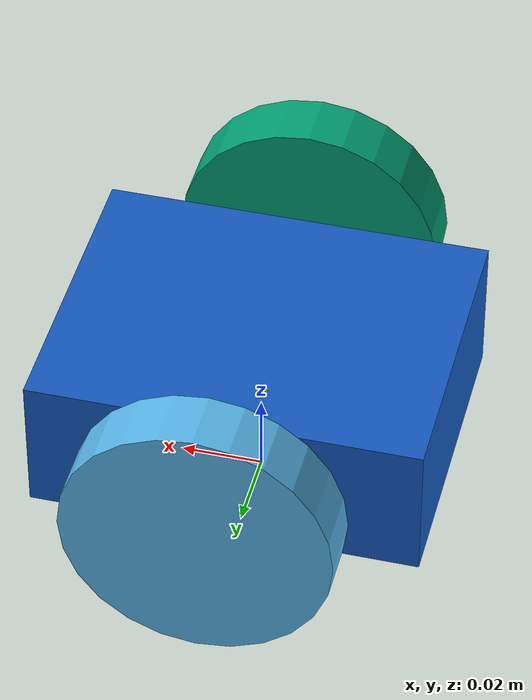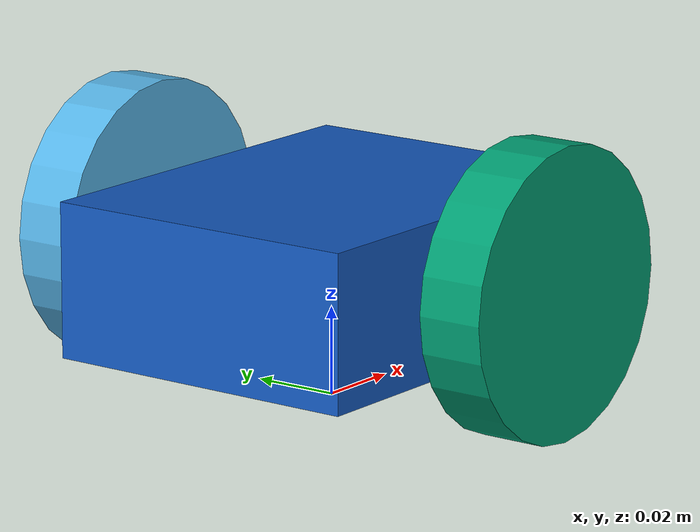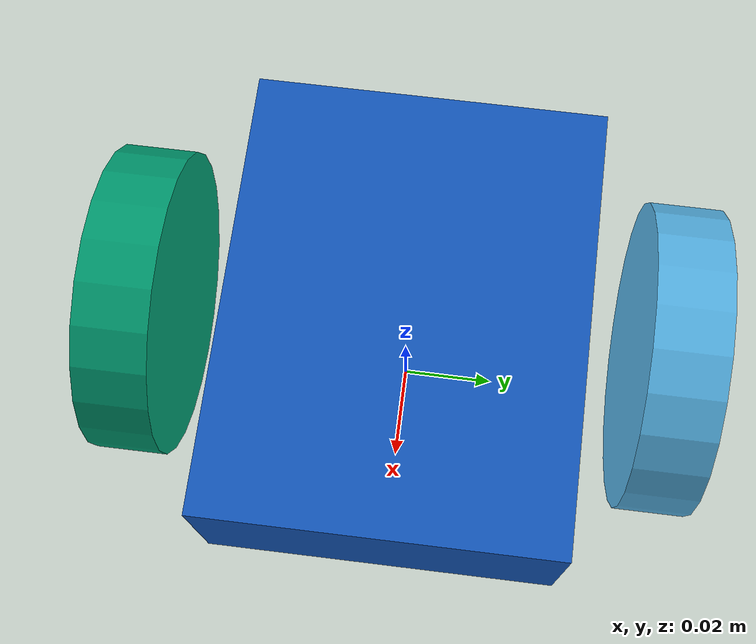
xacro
<?xml version="1.0"?>
<robot xmlns:xacro="http://www.ros.org/wiki/xacro" name="smart_community_robot">
  <xacro:property name="wheel_radius" value="0.0325"/>      <!-- TODO 实测轮半径，OriginBot 约 0.0325 -->
  <xacro:property name="wheel_width" value="0.015"/>        <!-- TODO 实测轮胎宽 -->
  <xacro:property name="wheel_separation" value="0.11"/>    <!-- TODO 实测两轮距，OriginBot 约 0.11 -->

  <link name="base_link">
    <inertial><origin xyz="0 0 0.02"/><mass value="0.5"/>
      <inertia ixx="0.0005" ixy="0" ixz="0" iyy="0.0006" iyz="0" izz="0.0008"/></inertial>
    <visual><origin xyz="0 0 0.03"/><geometry><box size="0.095 0.075 0.035"/></geometry>
      <material name="body_blue"><color rgba="0.08 0.35 0.75 1"/></material></visual>
    <collision><origin xyz="0 0 0.03"/><geometry><box size="0.095 0.075 0.035"/></geometry></collision>
  </link>

  <!-- 注意：轮子/万向轮只留 link，不发布多余 TF 也可以；保留是为了 RViz 显示完整 -->
  <link name="left_wheel_link">
    <visual><origin rpy="${pi/2} 0 0"/><geometry><cylinder radius="${wheel_radius}" length="${wheel_width}"/></geometry></visual>
  </link>
  <joint name="left_wheel_joint" type="continuous">
    <parent link="base_link"/><child link="left_wheel_link"/>
    <origin xyz="0 ${wheel_separation/2} ${wheel_radius}"/><axis xyz="0 1 0"/>
  </joint>

  <link name="right_wheel_link">
    <visual><origin rpy="${pi/2} 0 0"/><geometry><cylinder radius="${wheel_radius}" length="${wheel_width}"/></geometry></visual>
  </link>
  <joint name="right_wheel_joint" type="continuous">
    <parent link="base_link"/><child link="right_wheel_link"/>
    <origin xyz="0 ${-wheel_separation/2} ${wheel_radius}"/><axis xyz="0 1 0"/>
  </joint>

  <link name="laser_link"/>
  <!-- TODO 实测后修改（仿真值 0.0125 0 0.06，仅数量级参考） -->
  <joint name="laser_joint" type="fixed">
    <parent link="base_link"/><child link="laser_link"/>
    <origin xyz="0.0125 0.0 0.06" rpy="0.0 0.0 0.0"/>
  </joint>

  <link name="camera_link"/>
  <!-- TODO 实测后修改（仿真值 0.0475 0 0.055） -->
  <joint name="camera_joint" type="fixed">
    <parent link="base_link"/><child link="camera_link"/>
    <origin xyz="0.0475 0.0 0.055" rpy="0.0 0.0 0.0"/>
  </joint>

  <link name="imu_link"/>
  <!-- IMU 在底盘控制板上；实测芯片位置后修改 -->
  <joint name="imu_joint" type="fixed">
    <parent link="base_link"/><child link="imu_link"/>
    <origin xyz="0.0 0.0 0.01" rpy="0.0 0.0 0.0"/>
  </joint>

  <!-- odom -> base_link 由 OriginBot 底盘节点(originbot_base)发布，URDF 里不要也不需要发布 -->
</robot>
